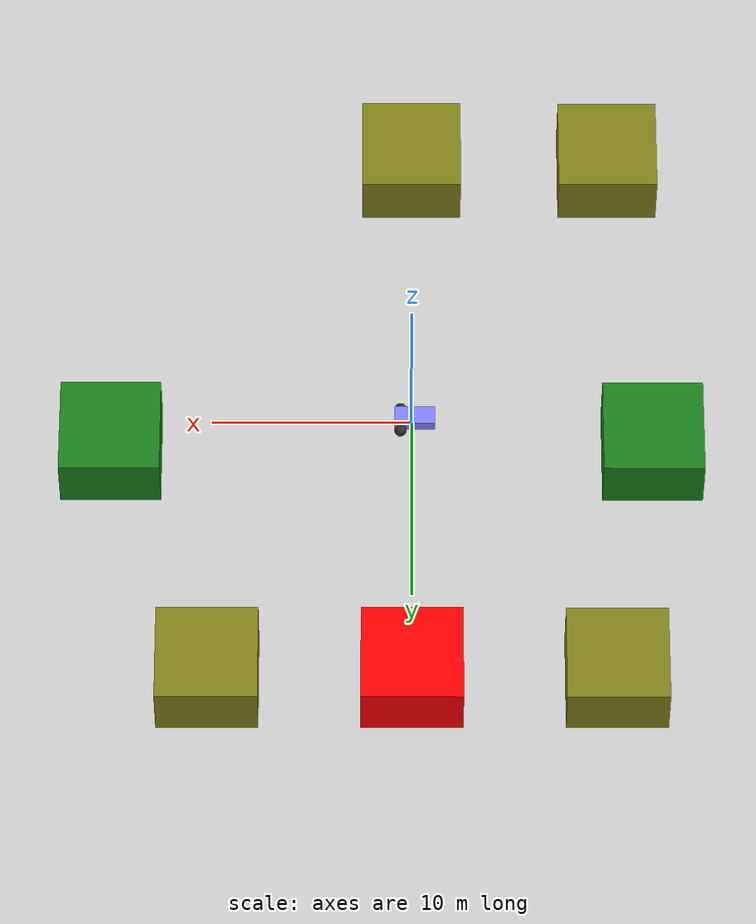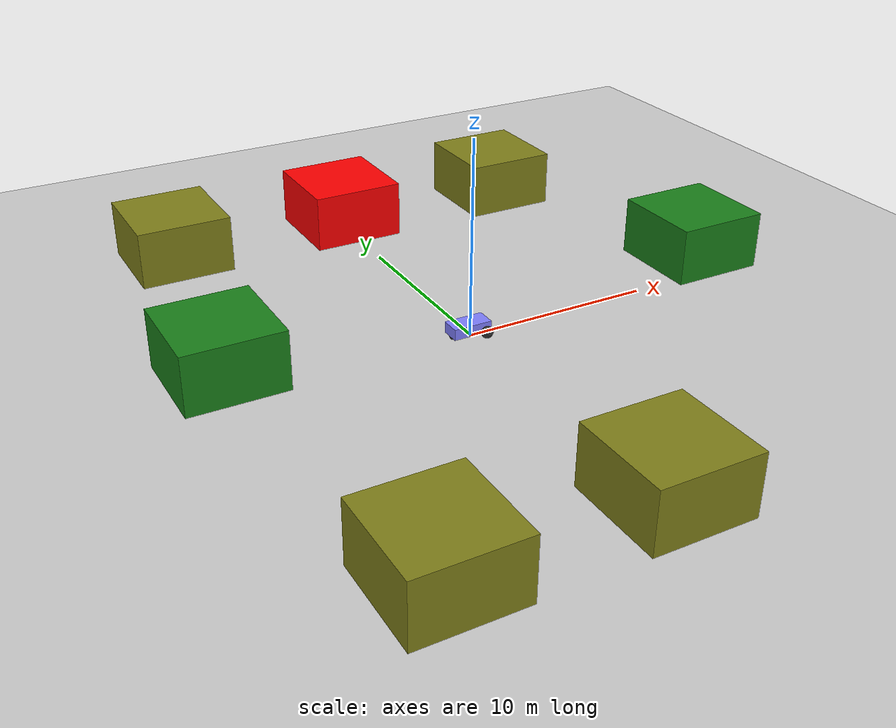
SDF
<?xml version="1.0" ?>
<sdf version="1.8">
  <world name="demo">
    <scene><grid>false</grid></scene>
    <plugin
      filename="ignition-gazebo-physics-system"
      name="gz::sim::systems::Physics">
    </plugin>
    <plugin
      filename="ignition-gazebo-sensors-system"
      name="gz::sim::systems::Sensors">
      <render_engine>ogre2</render_engine>
    </plugin>
    <plugin
      filename="ignition-gazebo-scene-broadcaster-system"
      name="gz::sim::systems::SceneBroadcaster">
    </plugin>
    <plugin
      filename="ignition-gazebo-user-commands-system"
      name="gz::sim::systems::UserCommands">
    </plugin>

    <light name="sun" type="directional">
      <cast_shadows>true</cast_shadows>
      <pose>0 0 10 0 0 0</pose>
      <diffuse>0.8 0.8 0.8 1</diffuse>
      <specular>0.2 0.2 0.2 1</specular>
      <attenuation>
        <range>1000</range>
        <constant>0.9</constant>
        <linear>0.01</linear>
        <quadratic>0.001</quadratic>
      </attenuation>
      <direction>-0.5 0.1 -0.9</direction>
    </light>

    <model name="ground_plane">
      <static>true</static>
      <link name="link">
        <collision name="collision">
          <geometry>
            <plane>
              <normal>0 0 1</normal>
              <size>100 100</size>
            </plane>
          </geometry>
        </collision>
        <visual name="visual">
          <geometry>
            <plane>
              <normal>0 0 1</normal>
              <size>100 100</size>
            </plane>
          </geometry>
          <material>
            <ambient>0.8 0.8 0.8 1</ambient>
            <diffuse>0.8 0.8 0.8 1</diffuse>
            <specular>0.8 0.8 0.8 1</specular>
          </material>
        </visual>
      </link>
    </model>

    <model name="diff_drive">
      <self_collide>true</self_collide>
      <pose>0 0 0.35 0 0 0</pose>
      <include merge="true">
        <uri>model://diff_drive_slam_and_nav</uri>
      </include>

      <plugin
        filename="ignition-gazebo-joint-state-publisher-system"
        name="gz::sim::systems::JointStatePublisher">
      </plugin>

      <plugin
        filename="ignition-gazebo-pose-publisher-system"
        name="gz::sim::systems::PosePublisher">
        <publish_link_pose>true</publish_link_pose>
        <use_pose_vector_msg>true</use_pose_vector_msg>
        <static_publisher>true</static_publisher>
        <static_update_frequency>1</static_update_frequency>
      </plugin>

      <plugin
        filename="ignition-gazebo-odometry-publisher-system"
        name="ignition::gazebo::systems::OdometryPublisher">
        <odom_frame>diff_drive/odom</odom_frame>
        <robot_base_frame>diff_drive</robot_base_frame>
      </plugin>
    </model>

    <model name="box">
      <pose>0 15 0.5 0 0 0</pose>
      <link name="box_link">
        <inertial>
          <inertia>
            <ixx>0.16666</ixx>
            <ixy>0</ixy>
            <ixz>0</ixz>
            <iyy>0.16666</iyy>
            <iyz>0</iyz>
            <izz>0.16666</izz>
          </inertia>
          <mass>1.0</mass>
        </inertial>
        <collision name="box_collision">
          <geometry>
            <box>
              <size>1 1 1</size>
            </box>
          </geometry>
        </collision>

        <visual name="box_visual">
          <geometry>
            <box>
              <size>5 5 5</size>
            </box>
          </geometry>
          <material>
            <ambient>1 0 0 1</ambient>
            <diffuse>1 0 0 1</diffuse>
            <specular>1 0 0 1</specular>
          </material>
        </visual>
      </link>
    </model>

    <model name="box2">
      <pose>10 15 0.5 0 0 0</pose>
      <link name="box_link">
        <inertial>
          <inertia>
            <ixx>0.16666</ixx>
            <ixy>0</ixy>
            <ixz>0</ixz>
            <iyy>0.16666</iyy>
            <iyz>0</iyz>
            <izz>0.16666</izz>
          </inertia>
          <mass>1.0</mass>
        </inertial>
        <collision name="box_collision">
          <geometry>
            <box>
              <size>1 1 1</size>
            </box>
          </geometry>
        </collision>

        <visual name="box_visual">
          <geometry>
            <box>
              <size>5 5 5</size>
            </box>
          </geometry>
          <material>
            <ambient>0.8 0.5 0.2 1</ambient>
            <diffuse>0.5 0.5 0.1 1</diffuse>
            <specular>0.2 0 0.3 1</specular>
          </material>
        </visual>
      </link>
    </model>

    <model name="box3">
      <pose>-10 15 0.5 0 0 0</pose>
      <link name="box_link">
        <inertial>
          <inertia>
            <ixx>0.16666</ixx>
            <ixy>0</ixy>
            <ixz>0</ixz>
            <iyy>0.16666</iyy>
            <iyz>0</iyz>
            <izz>0.16666</izz>
          </inertia>
          <mass>1.0</mass>
        </inertial>
        <collision name="box_collision">
          <geometry>
            <box>
              <size>1 1 1</size>
            </box>
          </geometry>
        </collision>

        <visual name="box_visual">
          <geometry>
            <box>
              <size>5 5 5</size>
            </box>
          </geometry>
          <material>
            <ambient>0.8 0.5 0.2 1</ambient>
            <diffuse>0.5 0.5 0.1 1</diffuse>
            <specular>0.2 0 0.3 1</specular>
          </material>
        </visual>
      </link>
    </model>

    <model name="box4">
      <pose>-10 -15 0.5 0 0 0</pose>
      <link name="box_link">
        <inertial>
          <inertia>
            <ixx>0.16666</ixx>
            <ixy>0</ixy>
            <ixz>0</ixz>
            <iyy>0.16666</iyy>
            <iyz>0</iyz>
            <izz>0.16666</izz>
          </inertia>
          <mass>1.0</mass>
        </inertial>
        <collision name="box_collision">
          <geometry>
            <box>
              <size>1 1 1</size>
            </box>
          </geometry>
        </collision>

        <visual name="box_visual">
          <geometry>
            <box>
              <size>5 5 5</size>
            </box>
          </geometry>
          <material>
            <ambient>0.8 0.5 0.2 1</ambient>
            <diffuse>0.5 0.5 0.1 1</diffuse>
            <specular>0.2 0 0.3 1</specular>
          </material>
        </visual>
      </link>
    </model>

    <model name="box5">
      <pose>0 -15 0.5 0 0 0</pose>
      <link name="box_link">
        <inertial>
          <inertia>
            <ixx>0.16666</ixx>
            <ixy>0</ixy>
            <ixz>0</ixz>
            <iyy>0.16666</iyy>
            <iyz>0</iyz>
            <izz>0.16666</izz>
          </inertia>
          <mass>1.0</mass>
        </inertial>
        <collision name="box_collision">
          <geometry>
            <box>
              <size>1 1 1</size>
            </box>
          </geometry>
        </collision>

        <visual name="box_visual">
          <geometry>
            <box>
              <size>5 5 5</size>
            </box>
          </geometry>
          <material>
            <ambient>0.8 0.5 0.2 1</ambient>
            <diffuse>0.5 0.5 0.1 1</diffuse>
            <specular>0.2 0 0.3 1</specular>
          </material>
        </visual>
      </link>
    </model>

    <model name="box7">
      <pose>15 2 0.5 0 0 0</pose>
      <link name="box_link">
        <inertial>
          <inertia>
            <ixx>0.16666</ixx>
            <ixy>0</ixy>
            <ixz>0</ixz>
            <iyy>0.16666</iyy>
            <iyz>0</iyz>
            <izz>0.16666</izz>
          </inertia>
          <mass>1.0</mass>
        </inertial>
        <collision name="box_collision">
          <geometry>
            <box>
              <size>1 1 1</size>
            </box>
          </geometry>
        </collision>

        <visual name="box_visual">
          <geometry>
            <box>
              <size>5 5 5</size>
            </box>
          </geometry>
          <material>
            <ambient>0.3 0.1 0.2 1</ambient>
            <diffuse>0.1 0.5 0.1 1</diffuse>
            <specular>0.2 0 0.3 1</specular>
          </material>
        </visual>
      </link>
    </model>

    <model name="box8">
      <pose>-12 2 0.5 0 0 0</pose>
      <link name="box_link">
        <inertial>
          <inertia>
            <ixx>0.16666</ixx>
            <ixy>0</ixy>
            <ixz>0</ixz>
            <iyy>0.16666</iyy>
            <iyz>0</iyz>
            <izz>0.16666</izz>
          </inertia>
          <mass>1.0</mass>
        </inertial>
        <collision name="box_collision">
          <geometry>
            <box>
              <size>1 1 1</size>
            </box>
          </geometry>
        </collision>

        <visual name="box_visual">
          <geometry>
            <box>
              <size>5 5 5</size>
            </box>
          </geometry>
          <material>
            <ambient>0.3 0.1 0.2 1</ambient>
            <diffuse>0.1 0.5 0.1 1</diffuse>
            <specular>0.2 0 0.3 1</specular>
          </material>
        </visual>
      </link>
    </model>

  </world>
</sdf>

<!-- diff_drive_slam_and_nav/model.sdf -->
<sdf version="1.8">
    <model name='diff_drive'>
      <link name='chassis'>
        <pose>-0.151427 -0 0.175 0 -0 0</pose>
        <inertial>
          <mass>1.14395</mass>
          <inertia>
            <ixx>0.126164</ixx>
            <ixy>0</ixy>
            <ixz>0</ixz>
            <iyy>0.416519</iyy>
            <iyz>0</iyz>
            <izz>0.481014</izz>
          </inertia>
        </inertial>
        <visual name='visual_chassis'>
          <geometry>
            <box>
              <size>2.01142 1 0.568726</size>
            </box>
          </geometry>
          <material>
            <ambient>0.5 0.5 1.0 1</ambient>
            <diffuse>0.5 0.5 1.0 1</diffuse>
            <specular>0.0 0.0 1.0 1</specular>
          </material>
        </visual>
        <collision name='collision_chassis'>
          <geometry>
            <box>
              <size>2.01142 1 0.568726</size>
            </box>
          </geometry>
        </collision>
      </link>

      <link name="base_footprint">
        <pose>0 0 0 0 0 0</pose>
      </link>

      <link name="base_link">
        <pose>0 0 0 0 0 0</pose>
      </link>

      <joint name="base_link_chassis" type="fixed">
          <parent>chassis</parent>
          <child>base_footprint</child>
      </joint>

      <joint name="base_link_chassis2" type="fixed">
        <parent>chassis</parent>
        <child>base_link</child>
      </joint>

      <link name='left_wheel'>
        <pose>0.554283 0.625029 -0.025 -1.5707 0 0</pose>
        <inertial>
          <mass>2</mass>
          <inertia>
            <ixx>0.145833</ixx>
            <ixy>0</ixy>
            <ixz>0</ixz>
            <iyy>0.145833</iyy>
            <iyz>0</iyz>
            <izz>0.125</izz>
          </inertia>
        </inertial>
        <visual name='visual_left_wheel'>
          <geometry>
            <sphere>
              <radius>0.3</radius>
            </sphere>
          </geometry>
          <material>
            <ambient>0.2 0.2 0.2 1</ambient>
            <diffuse>0.2 0.2 0.2 1</diffuse>
            <specular>0.2 0.2 0.2 1</specular>
          </material>
        </visual>
        <collision name='collision_left_wheel'>
          <geometry>
            <sphere>
              <radius>0.3</radius>
            </sphere>
          </geometry>
        </collision>
      </link>

      <link name='right_wheel'>
        <pose>0.554282 -0.625029 -0.025 -1.5707 0 0</pose>
        <inertial>
          <mass>2</mass>
          <inertia>
            <ixx>0.145833</ixx>
            <ixy>0</ixy>
            <ixz>0</ixz>
            <iyy>0.145833</iyy>
            <iyz>0</iyz>
            <izz>0.125</izz>
          </inertia>
        </inertial>
        <visual name='visual_right_wheel'>
          <geometry>
            <sphere>
              <radius>0.3</radius>
            </sphere>
          </geometry>
          <material>
            <ambient>0.2 0.2 0.2 1</ambient>
            <diffuse>0.2 0.2 0.2 1</diffuse>
            <specular>0.2 0.2 0.2 1</specular>
          </material>
        </visual>
        <collision name='collision_right_wheel'>
          <geometry>
            <sphere>
              <radius>0.3</radius>
            </sphere>
          </geometry>
        </collision>
      </link>

      <link name='caster'>
        <pose>-0.957138 -0 -0.125 0 -0 0</pose>
        <inertial>
          <mass>1</mass>
          <inertia>
            <ixx>0.1</ixx>
            <ixy>0</ixy>
            <ixz>0</ixz>
            <iyy>0.1</iyy>
            <iyz>0</iyz>
            <izz>0.1</izz>
          </inertia>
        </inertial>
        <visual name='visual_caster'>
          <geometry>
            <sphere>
              <radius>0.2</radius>
            </sphere>
          </geometry>
          <material>
            <ambient>0.2 0.2 0.2 1</ambient>
            <diffuse>0.2 0.2 0.2 1</diffuse>
            <specular>0.2 0.2 0.2 1</specular>
          </material>
        </visual>
        <collision name='collision_caster'>
          <geometry>
            <sphere>
              <radius>0.2</radius>
            </sphere>
          </geometry>
        </collision>
      </link>

      <link name="lidar_link">
        <pose>0 0 0.5 0 0 0</pose>
        <inertial>
          <mass>0.1</mass>
          <inertia>
            <ixx>0.000166667</ixx>
            <iyy>0.000166667</iyy>
            <izz>0.000166667</izz>
          </inertia>
        </inertial>
        <collision name="collision">
          <geometry>
            <box>
              <size>0.1 0.1 0.1</size>
            </box>
          </geometry>
        </collision>
        <visual name="visual">
          <geometry>
            <box>
              <size>0.1 0.1 0.1</size>
            </box>
          </geometry>
        </visual>
        <sensor name='gpu_lidar' type='gpu_lidar'>
          <pose>0 0 0 0 0 0</pose>
          <topic>scan</topic>
          <ignition_frame_id>diff_drive/lidar_link</ignition_frame_id>
          <update_rate>10</update_rate>
          <lidar>
            <scan>
              <horizontal>
                <samples>640</samples>
                <resolution>1</resolution>
                <min_angle>-3.141592</min_angle>
                <max_angle>3.141592</max_angle>
              </horizontal>
              <vertical>
                <samples>1</samples>
                <resolution>1</resolution>
                <min_angle>0.0</min_angle>
                <max_angle>0.0</max_angle>
              </vertical>
            </scan>
            <range>
              <min>0.08</min>
              <max>10.0</max>
              <resolution>0.01</resolution>
            </range>
          </lidar>
          <visualize>true</visualize>
        </sensor>
      </link>

      <joint name='lidar_joint' type='fixed'>
        <parent>chassis</parent>
        <child>lidar_link</child>
      </joint>

      <joint name='left_wheel_joint' type='revolute'>
        <parent>chassis</parent>
        <child>left_wheel</child>
        <axis>
          <xyz>0 0 1</xyz>
          <limit>
            <lower>-1.79769e+308</lower>
            <upper>1.79769e+308</upper>
          </limit>
        </axis>
      </joint>

      <joint name='right_wheel_joint' type='revolute'>
        <parent>chassis</parent>
        <child>right_wheel</child>
        <axis>
          <xyz>0 0 1</xyz>
          <limit>
            <lower>-1.79769e+308</lower>
            <upper>1.79769e+308</upper>
          </limit>
        </axis>
      </joint>

      <joint name='caster_wheel' type='ball'>
        <parent>chassis</parent>
        <child>caster</child>
      </joint>

      <plugin
        filename="ignition-gazebo-diff-drive-system"
        name="ignition::gazebo::systems::DiffDrive">
        <left_joint>left_wheel_joint</left_joint>
        <right_joint>right_wheel_joint</right_joint>
        <wheel_separation>1.25</wheel_separation>
        <wheel_radius>0.3</wheel_radius>
        <odom_publish_frequency>1</odom_publish_frequency>
        <max_linear_acceleration>1</max_linear_acceleration>
        <min_linear_acceleration>-1</min_linear_acceleration>
        <max_angular_acceleration>2</max_angular_acceleration>
        <min_angular_acceleration>-2</min_angular_acceleration>
        <max_linear_velocity>0.5</max_linear_velocity>
        <min_linear_velocity>-0.5</min_linear_velocity>
        <max_angular_velocity>1</max_angular_velocity>
        <min_angular_velocity>-1</min_angular_velocity>
      </plugin>
    </model>
</sdf>
